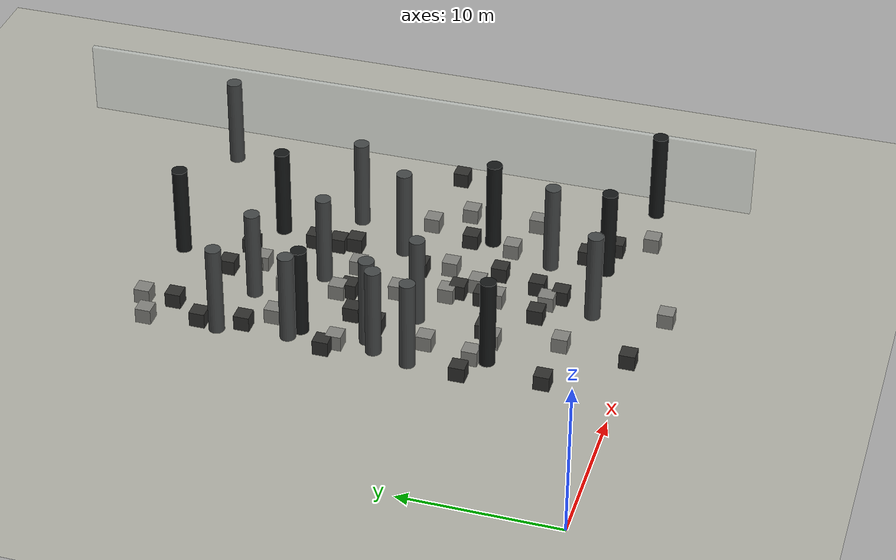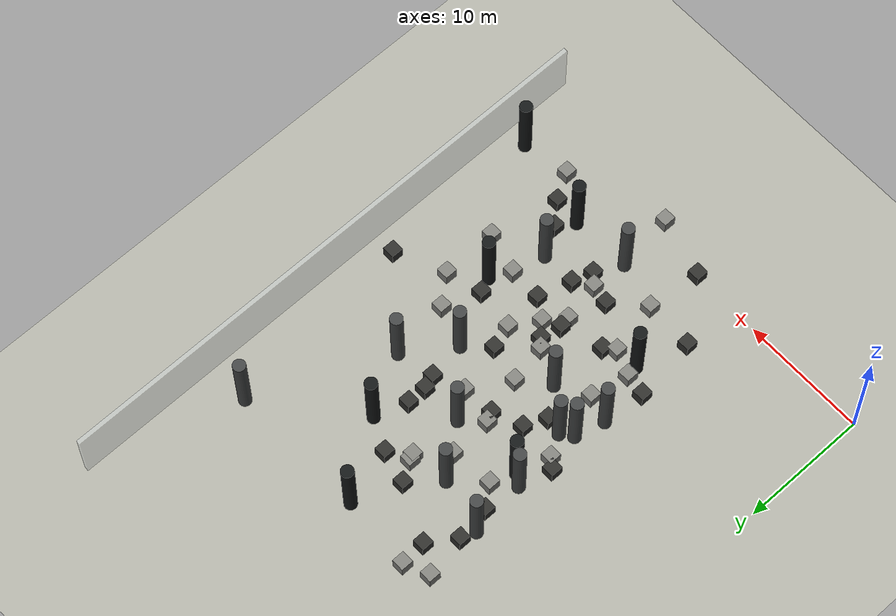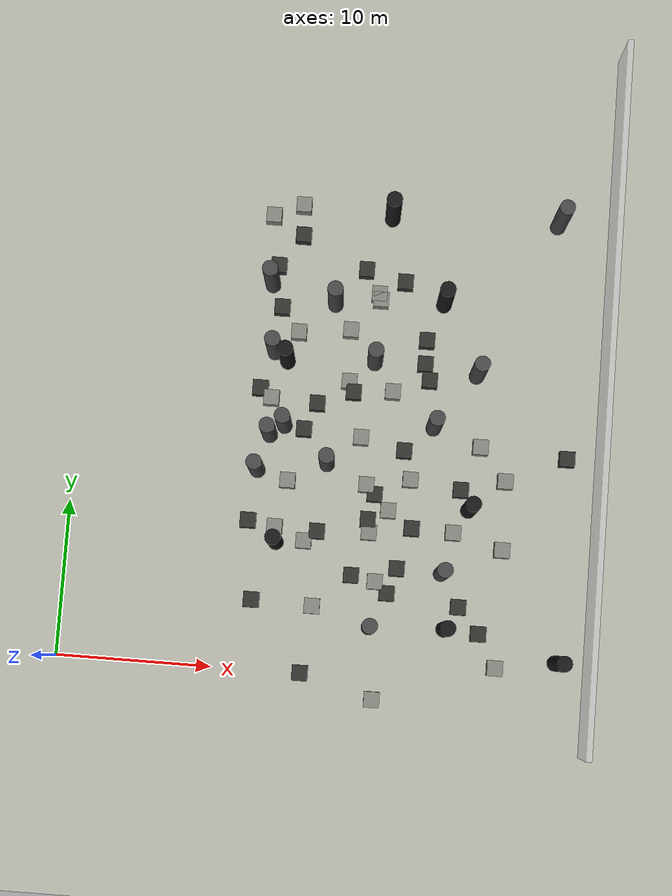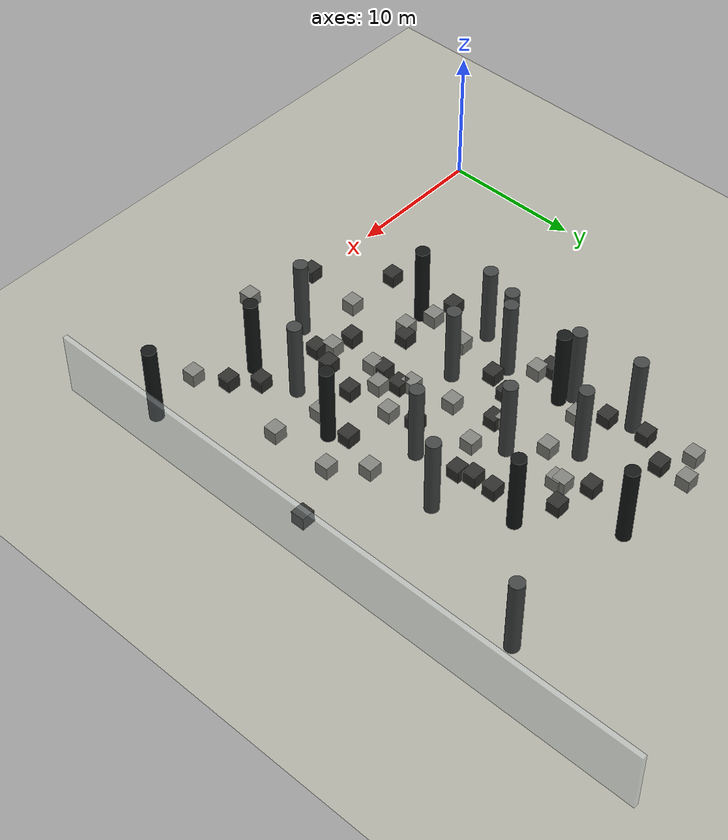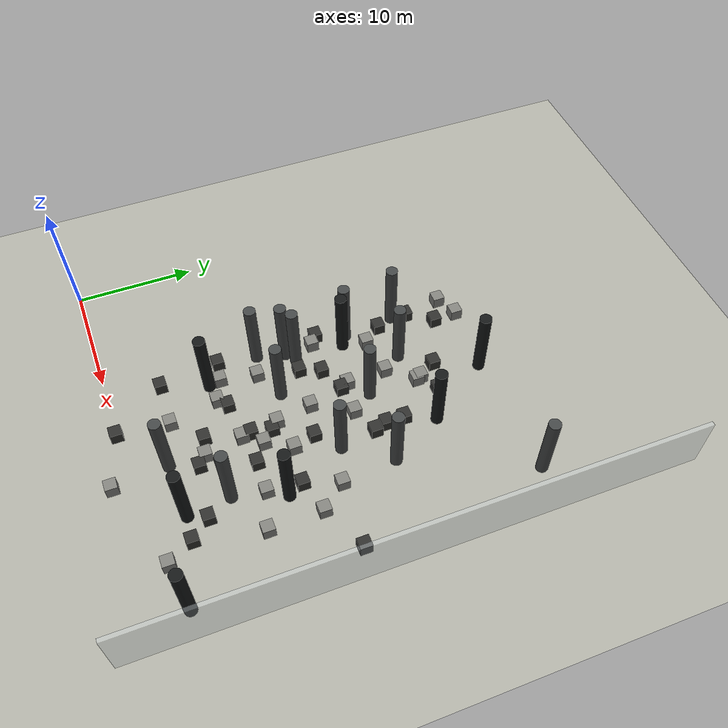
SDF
<sdf version="1.9">
 <world name="sando_forest3_walls_xtd2">
  <model name="ground_plane">
   <static>true</static>
   <link name="link">
    <collision name="collision">
     <geometry><plane><normal>0 0 1</normal><size>120 120</size></plane></geometry>
    </collision>
    <visual name="visual">
     <geometry><plane><normal>0 0 1</normal><size>120 120</size></plane></geometry>
     <material><ambient>0.68 0.68 0.64 1</ambient><diffuse>0.68 0.68 0.64 1</diffuse></material>
    </visual>
   </link>
  </model>
  <model name="struct_pillar_003">
   <static>true</static>
   <pose>13.526 8.273 3.000 0 0 0</pose>
   <link name="link">
    <collision name="collision">
     <geometry><cylinder><radius>0.500</radius><length>6.000</length></cylinder></geometry>
    </collision>
    <visual name="visual">
     <geometry><cylinder><radius>0.500</radius><length>6.000</length></cylinder></geometry>
     <material><ambient>0.08 0.09 0.09 1</ambient><diffuse>0.08 0.09 0.09 1</diffuse></material>
    </visual>
   </link>
  </model>
  <model name="struct_pillar_004">
   <static>true</static>
   <pose>16.454 13.565 3.000 0 0 0</pose>
   <link name="link">
    <collision name="collision">
     <geometry><cylinder><radius>0.500</radius><length>6.000</length></cylinder></geometry>
    </collision>
    <visual name="visual">
     <geometry><cylinder><radius>0.500</radius><length>6.000</length></cylinder></geometry>
     <material><ambient>0.26 0.27 0.27 1</ambient><diffuse>0.26 0.27 0.27 1</diffuse></material>
    </visual>
   </link>
  </model>
  <model name="struct_pillar_005">
   <static>true</static>
   <pose>11.979 12.843 3.000 0 0 0</pose>
   <link name="link">
    <collision name="collision">
     <geometry><cylinder><radius>0.500</radius><length>6.000</length></cylinder></geometry>
    </collision>
    <visual name="visual">
     <geometry><cylinder><radius>0.500</radius><length>6.000</length></cylinder></geometry>
     <material><ambient>0.26 0.27 0.27 1</ambient><diffuse>0.26 0.27 0.27 1</diffuse></material>
    </visual>
   </link>
  </model>
  <model name="struct_pillar_007">
   <static>true</static>
   <pose>19.924 3.259 3.000 0 0 0</pose>
   <link name="link">
    <collision name="collision">
     <geometry><cylinder><radius>0.500</radius><length>6.000</length></cylinder></geometry>
    </collision>
    <visual name="visual">
     <geometry><cylinder><radius>0.500</radius><length>6.000</length></cylinder></geometry>
     <material><ambient>0.26 0.27 0.27 1</ambient><diffuse>0.26 0.27 0.27 1</diffuse></material>
    </visual>
   </link>
  </model>
  <model name="struct_pillar_008">
   <static>true</static>
   <pose>24.324 7.032 3.000 0 0 0</pose>
   <link name="link">
    <collision name="collision">
     <geometry><cylinder><radius>0.500</radius><length>6.000</length></cylinder></geometry>
    </collision>
    <visual name="visual">
     <geometry><cylinder><radius>0.500</radius><length>6.000</length></cylinder></geometry>
     <material><ambient>0.26 0.27 0.27 1</ambient><diffuse>0.26 0.27 0.27 1</diffuse></material>
    </visual>
   </link>
  </model>
  <model name="struct_pillar_009">
   <static>true</static>
   <pose>25.796 11.229 3.000 0 0 0</pose>
   <link name="link">
    <collision name="collision">
     <geometry><cylinder><radius>0.500</radius><length>6.000</length></cylinder></geometry>
    </collision>
    <visual name="visual">
     <geometry><cylinder><radius>0.500</radius><length>6.000</length></cylinder></geometry>
     <material><ambient>0.08 0.09 0.09 1</ambient><diffuse>0.08 0.09 0.09 1</diffuse></material>
    </visual>
   </link>
  </model>
  <model name="struct_pillar_010">
   <static>true</static>
   <pose>23.188 16.411 3.000 0 0 0</pose>
   <link name="link">
    <collision name="collision">
     <geometry><cylinder><radius>0.500</radius><length>6.000</length></cylinder></geometry>
    </collision>
    <visual name="visual">
     <geometry><cylinder><radius>0.500</radius><length>6.000</length></cylinder></geometry>
     <material><ambient>0.26 0.27 0.27 1</ambient><diffuse>0.26 0.27 0.27 1</diffuse></material>
    </visual>
   </link>
  </model>
  <model name="struct_pillar_012">
   <static>true</static>
   <pose>24.723 3.481 3.000 0 0 0</pose>
   <link name="link">
    <collision name="collision">
     <geometry><cylinder><radius>0.500</radius><length>6.000</length></cylinder></geometry>
    </collision>
    <visual name="visual">
     <geometry><cylinder><radius>0.500</radius><length>6.000</length></cylinder></geometry>
     <material><ambient>0.08 0.09 0.09 1</ambient><diffuse>0.08 0.09 0.09 1</diffuse></material>
    </visual>
   </link>
  </model>
  <model name="struct_pillar_015">
   <static>true</static>
   <pose>13.375 20.097 3.000 0 0 0</pose>
   <link name="link">
    <collision name="collision">
     <geometry><cylinder><radius>0.500</radius><length>6.000</length></cylinder></geometry>
    </collision>
    <visual name="visual">
     <geometry><cylinder><radius>0.500</radius><length>6.000</length></cylinder></geometry>
     <material><ambient>0.08 0.09 0.09 1</ambient><diffuse>0.08 0.09 0.09 1</diffuse></material>
    </visual>
   </link>
  </model>
  <model name="struct_pillar_016">
   <static>true</static>
   <pose>19.069 20.418 3.000 0 0 0</pose>
   <link name="link">
    <collision name="collision">
     <geometry><cylinder><radius>0.500</radius><length>6.000</length></cylinder></geometry>
    </collision>
    <visual name="visual">
     <geometry><cylinder><radius>0.500</radius><length>6.000</length></cylinder></geometry>
     <material><ambient>0.26 0.27 0.27 1</ambient><diffuse>0.26 0.27 0.27 1</diffuse></material>
    </visual>
   </link>
  </model>
  <model name="struct_pillar_017">
   <static>true</static>
   <pose>25.769 20.037 3.000 0 0 0</pose>
   <link name="link">
    <collision name="collision">
     <geometry><cylinder><radius>0.500</radius><length>6.000</length></cylinder></geometry>
    </collision>
    <visual name="visual">
     <geometry><cylinder><radius>0.500</radius><length>6.000</length></cylinder></geometry>
     <material><ambient>0.26 0.27 0.27 1</ambient><diffuse>0.26 0.27 0.27 1</diffuse></material>
    </visual>
   </link>
  </model>
  <model name="struct_pillar_020">
   <static>true</static>
   <pose>16.225 24.100 3.000 0 0 0</pose>
   <link name="link">
    <collision name="collision">
     <geometry><cylinder><radius>0.500</radius><length>6.000</length></cylinder></geometry>
    </collision>
    <visual name="visual">
     <geometry><cylinder><radius>0.500</radius><length>6.000</length></cylinder></geometry>
     <material><ambient>0.26 0.27 0.27 1</ambient><diffuse>0.26 0.27 0.27 1</diffuse></material>
    </visual>
   </link>
  </model>
  <model name="struct_pillar_021">
   <static>true</static>
   <pose>23.306 24.591 3.000 0 0 0</pose>
   <link name="link">
    <collision name="collision">
     <geometry><cylinder><radius>0.500</radius><length>6.000</length></cylinder></geometry>
    </collision>
    <visual name="visual">
     <geometry><cylinder><radius>0.500</radius><length>6.000</length></cylinder></geometry>
     <material><ambient>0.08 0.09 0.09 1</ambient><diffuse>0.08 0.09 0.09 1</diffuse></material>
    </visual>
   </link>
  </model>
  <model name="struct_pillar_027">
   <static>true</static>
   <pose>32.000 1.853 3.000 0 0 0</pose>
   <link name="link">
    <collision name="collision">
     <geometry><cylinder><radius>0.500</radius><length>6.000</length></cylinder></geometry>
    </collision>
    <visual name="visual">
     <geometry><cylinder><radius>0.500</radius><length>6.000</length></cylinder></geometry>
     <material><ambient>0.08 0.09 0.09 1</ambient><diffuse>0.08 0.09 0.09 1</diffuse></material>
    </visual>
   </link>
  </model>
  <model name="struct_pillar_030">
   <static>true</static>
   <pose>19.536 30.099 3.000 0 0 0</pose>
   <link name="link">
    <collision name="collision">
     <geometry><cylinder><radius>0.500</radius><length>6.000</length></cylinder></geometry>
    </collision>
    <visual name="visual">
     <geometry><cylinder><radius>0.500</radius><length>6.000</length></cylinder></geometry>
     <material><ambient>0.08 0.09 0.09 1</ambient><diffuse>0.08 0.09 0.09 1</diffuse></material>
    </visual>
   </link>
  </model>
  <model name="struct_pillar_031">
   <static>true</static>
   <pose>30.466 30.389 3.000 0 0 0</pose>
   <link name="link">
    <collision name="collision">
     <geometry><cylinder><radius>0.500</radius><length>6.000</length></cylinder></geometry>
    </collision>
    <visual name="visual">
     <geometry><cylinder><radius>0.500</radius><length>6.000</length></cylinder></geometry>
     <material><ambient>0.26 0.27 0.27 1</ambient><diffuse>0.26 0.27 0.27 1</diffuse></material>
    </visual>
   </link>
  </model>
  <model name="struct_pillar_034">
   <static>true</static>
   <pose>12.025 25.099 3.000 0 0 0</pose>
   <link name="link">
    <collision name="collision">
     <geometry><cylinder><radius>0.500</radius><length>6.000</length></cylinder></geometry>
    </collision>
    <visual name="visual">
     <geometry><cylinder><radius>0.500</radius><length>6.000</length></cylinder></geometry>
     <material><ambient>0.26 0.27 0.27 1</ambient><diffuse>0.26 0.27 0.27 1</diffuse></material>
    </visual>
   </link>
  </model>
  <model name="struct_pillar_035">
   <static>true</static>
   <pose>12.516 20.647 3.000 0 0 0</pose>
   <link name="link">
    <collision name="collision">
     <geometry><cylinder><radius>0.500</radius><length>6.000</length></cylinder></geometry>
    </collision>
    <visual name="visual">
     <geometry><cylinder><radius>0.500</radius><length>6.000</length></cylinder></geometry>
     <material><ambient>0.26 0.27 0.27 1</ambient><diffuse>0.26 0.27 0.27 1</diffuse></material>
    </visual>
   </link>
  </model>
  <model name="struct_pillar_037">
   <static>true</static>
   <pose>12.606 15.183 3.000 0 0 0</pose>
   <link name="link">
    <collision name="collision">
     <geometry><cylinder><radius>0.500</radius><length>6.000</length></cylinder></geometry>
    </collision>
    <visual name="visual">
     <geometry><cylinder><radius>0.500</radius><length>6.000</length></cylinder></geometry>
     <material><ambient>0.26 0.27 0.27 1</ambient><diffuse>0.26 0.27 0.27 1</diffuse></material>
    </visual>
   </link>
  </model>
  <model name="struct_pillar_038">
   <static>true</static>
   <pose>13.505 15.862 3.000 0 0 0</pose>
   <link name="link">
    <collision name="collision">
     <geometry><cylinder><radius>0.500</radius><length>6.000</length></cylinder></geometry>
    </collision>
    <visual name="visual">
     <geometry><cylinder><radius>0.500</radius><length>6.000</length></cylinder></geometry>
     <material><ambient>0.26 0.27 0.27 1</ambient><diffuse>0.26 0.27 0.27 1</diffuse></material>
    </visual>
   </link>
  </model>
  <model name="struct_wall_044">
   <static>true</static>
   <pose>12.761 23.593 0.500 0 0 0</pose>
   <link name="link">
    <collision name="collision"><geometry><box><size>1.000 1.000 1.000</size></box></geometry></collision>
    <visual name="visual">
     <geometry><box><size>1.000 1.000 1.000</size></box></geometry>
     <material><ambient>0.18 0.18 0.17 1</ambient><diffuse>0.18 0.18 0.17 1</diffuse></material>
    </visual>
   </link>
  </model>
  <model name="struct_wall_045">
   <static>true</static>
   <pose>12.518 17.585 0.500 0 0 0</pose>
   <link name="link">
    <collision name="collision"><geometry><box><size>1.000 1.000 1.000</size></box></geometry></collision>
    <visual name="visual">
     <geometry><box><size>1.000 1.000 1.000</size></box></geometry>
     <material><ambient>0.50 0.50 0.48 1</ambient><diffuse>0.50 0.50 0.48 1</diffuse></material>
    </visual>
   </link>
  </model>
  <model name="struct_wall_046">
   <static>true</static>
   <pose>19.349 10.146 0.500 0 0 0</pose>
   <link name="link">
    <collision name="collision"><geometry><box><size>1.000 1.000 1.000</size></box></geometry></collision>
    <visual name="visual">
     <geometry><box><size>1.000 1.000 1.000</size></box></geometry>
     <material><ambient>0.18 0.18 0.17 1</ambient><diffuse>0.18 0.18 0.17 1</diffuse></material>
    </visual>
   </link>
  </model>
  <model name="struct_wall_047">
   <static>true</static>
   <pose>19.090 12.381 0.500 0 0 0</pose>
   <link name="link">
    <collision name="collision"><geometry><box><size>1.000 1.000 1.000</size></box></geometry></collision>
    <visual name="visual">
     <geometry><box><size>1.000 1.000 1.000</size></box></geometry>
     <material><ambient>0.50 0.50 0.48 1</ambient><diffuse>0.50 0.50 0.48 1</diffuse></material>
    </visual>
   </link>
  </model>
  <model name="struct_wall_048">
   <static>true</static>
   <pose>22.716 19.471 0.500 0 0 0</pose>
   <link name="link">
    <collision name="collision"><geometry><box><size>1.000 1.000 1.000</size></box></geometry></collision>
    <visual name="visual">
     <geometry><box><size>1.000 1.000 1.000</size></box></geometry>
     <material><ambient>0.18 0.18 0.17 1</ambient><diffuse>0.18 0.18 0.17 1</diffuse></material>
    </visual>
   </link>
  </model>
  <model name="struct_wall_049">
   <static>true</static>
   <pose>21.922 12.910 0.500 0 0 0</pose>
   <link name="link">
    <collision name="collision"><geometry><box><size>1.000 1.000 1.000</size></box></geometry></collision>
    <visual name="visual">
     <geometry><box><size>1.000 1.000 1.000</size></box></geometry>
     <material><ambient>0.50 0.50 0.48 1</ambient><diffuse>0.50 0.50 0.48 1</diffuse></material>
    </visual>
   </link>
  </model>
  <model name="struct_wall_058">
   <static>true</static>
   <pose>11.635 9.532 0.500 0 0 0</pose>
   <link name="link">
    <collision name="collision"><geometry><box><size>1.000 1.000 1.000</size></box></geometry></collision>
    <visual name="visual">
     <geometry><box><size>1.000 1.000 1.000</size></box></geometry>
     <material><ambient>0.18 0.18 0.17 1</ambient><diffuse>0.18 0.18 0.17 1</diffuse></material>
    </visual>
   </link>
  </model>
  <model name="struct_wall_059">
   <static>true</static>
   <pose>15.314 8.470 0.500 0 0 0</pose>
   <link name="link">
    <collision name="collision"><geometry><box><size>1.000 1.000 1.000</size></box></geometry></collision>
    <visual name="visual">
     <geometry><box><size>1.000 1.000 1.000</size></box></geometry>
     <material><ambient>0.50 0.50 0.48 1</ambient><diffuse>0.50 0.50 0.48 1</diffuse></material>
    </visual>
   </link>
  </model>
  <model name="struct_wall_060">
   <static>true</static>
   <pose>18.533 6.489 0.500 0 0 0</pose>
   <link name="link">
    <collision name="collision"><geometry><box><size>1.000 1.000 1.000</size></box></geometry></collision>
    <visual name="visual">
     <geometry><box><size>1.000 1.000 1.000</size></box></geometry>
     <material><ambient>0.18 0.18 0.17 1</ambient><diffuse>0.18 0.18 0.17 1</diffuse></material>
    </visual>
   </link>
  </model>
  <model name="struct_wall_061">
   <static>true</static>
   <pose>16.166 4.338 0.500 0 0 0</pose>
   <link name="link">
    <collision name="collision"><geometry><box><size>1.000 1.000 1.000</size></box></geometry></collision>
    <visual name="visual">
     <geometry><box><size>1.000 1.000 1.000</size></box></geometry>
     <material><ambient>0.50 0.50 0.48 1</ambient><diffuse>0.50 0.50 0.48 1</diffuse></material>
    </visual>
   </link>
  </model>
  <model name="struct_wall_062">
   <static>true</static>
   <pose>25.538 4.952 0.500 0 0 0</pose>
   <link name="link">
    <collision name="collision"><geometry><box><size>1.000 1.000 1.000</size></box></geometry></collision>
    <visual name="visual">
     <geometry><box><size>1.000 1.000 1.000</size></box></geometry>
     <material><ambient>0.18 0.18 0.17 1</ambient><diffuse>0.18 0.18 0.17 1</diffuse></material>
    </visual>
   </link>
  </model>
  <model name="struct_wall_063">
   <static>true</static>
   <pose>24.898 9.690 0.500 0 0 0</pose>
   <link name="link">
    <collision name="collision"><geometry><box><size>1.000 1.000 1.000</size></box></geometry></collision>
    <visual name="visual">
     <geometry><box><size>1.000 1.000 1.000</size></box></geometry>
     <material><ambient>0.50 0.50 0.48 1</ambient><diffuse>0.50 0.50 0.48 1</diffuse></material>
    </visual>
   </link>
  </model>
  <model name="struct_wall_064">
   <static>true</static>
   <pose>22.211 9.770 0.500 0 0 0</pose>
   <link name="link">
    <collision name="collision"><geometry><box><size>1.000 1.000 1.000</size></box></geometry></collision>
    <visual name="visual">
     <geometry><box><size>1.000 1.000 1.000</size></box></geometry>
     <material><ambient>0.18 0.18 0.17 1</ambient><diffuse>0.18 0.18 0.17 1</diffuse></material>
    </visual>
   </link>
  </model>
  <model name="struct_wall_065">
   <static>true</static>
   <pose>20.618 10.813 0.500 0 0 0</pose>
   <link name="link">
    <collision name="collision"><geometry><box><size>1.000 1.000 1.000</size></box></geometry></collision>
    <visual name="visual">
     <geometry><box><size>1.000 1.000 1.000</size></box></geometry>
     <material><ambient>0.50 0.50 0.48 1</ambient><diffuse>0.50 0.50 0.48 1</diffuse></material>
    </visual>
   </link>
  </model>
  <model name="struct_wall_074">
   <static>true</static>
   <pose>11.754 18.169 0.500 0 0 0</pose>
   <link name="link">
    <collision name="collision"><geometry><box><size>1.000 1.000 1.000</size></box></geometry></collision>
    <visual name="visual">
     <geometry><box><size>1.000 1.000 1.000</size></box></geometry>
     <material><ambient>0.18 0.18 0.17 1</ambient><diffuse>0.18 0.18 0.17 1</diffuse></material>
    </visual>
   </link>
  </model>
  <model name="struct_wall_075">
   <static>true</static>
   <pose>18.529 15.422 0.500 0 0 0</pose>
   <link name="link">
    <collision name="collision"><geometry><box><size>1.000 1.000 1.000</size></box></geometry></collision>
    <visual name="visual">
     <geometry><box><size>1.000 1.000 1.000</size></box></geometry>
     <material><ambient>0.50 0.50 0.48 1</ambient><diffuse>0.50 0.50 0.48 1</diffuse></material>
    </visual>
   </link>
  </model>
  <model name="struct_wall_076">
   <static>true</static>
   <pose>21.382 14.764 0.500 0 0 0</pose>
   <link name="link">
    <collision name="collision"><geometry><box><size>1.000 1.000 1.000</size></box></geometry></collision>
    <visual name="visual">
     <geometry><box><size>1.000 1.000 1.000</size></box></geometry>
     <material><ambient>0.18 0.18 0.17 1</ambient><diffuse>0.18 0.18 0.17 1</diffuse></material>
    </visual>
   </link>
  </model>
  <model name="struct_wall_077">
   <static>true</static>
   <pose>26.302 15.347 0.500 0 0 0</pose>
   <link name="link">
    <collision name="collision"><geometry><box><size>1.000 1.000 1.000</size></box></geometry></collision>
    <visual name="visual">
     <geometry><box><size>1.000 1.000 1.000</size></box></geometry>
     <material><ambient>0.50 0.50 0.48 1</ambient><diffuse>0.50 0.50 0.48 1</diffuse></material>
    </visual>
   </link>
  </model>
  <model name="struct_wall_078">
   <static>true</static>
   <pose>22.362 20.523 0.500 0 0 0</pose>
   <link name="link">
    <collision name="collision"><geometry><box><size>1.000 1.000 1.000</size></box></geometry></collision>
    <visual name="visual">
     <geometry><box><size>1.000 1.000 1.000</size></box></geometry>
     <material><ambient>0.18 0.18 0.17 1</ambient><diffuse>0.18 0.18 0.17 1</diffuse></material>
    </visual>
   </link>
  </model>
  <model name="struct_wall_079">
   <static>true</static>
   <pose>20.370 18.557 0.500 0 0 0</pose>
   <link name="link">
    <collision name="collision"><geometry><box><size>1.000 1.000 1.000</size></box></geometry></collision>
    <visual name="visual">
     <geometry><box><size>1.000 1.000 1.000</size></box></geometry>
     <material><ambient>0.50 0.50 0.48 1</ambient><diffuse>0.50 0.50 0.48 1</diffuse></material>
    </visual>
   </link>
  </model>
  <model name="struct_wall_080">
   <static>true</static>
   <pose>17.833 18.344 0.500 0 0 0</pose>
   <link name="link">
    <collision name="collision"><geometry><box><size>1.000 1.000 1.000</size></box></geometry></collision>
    <visual name="visual">
     <geometry><box><size>1.000 1.000 1.000</size></box></geometry>
     <material><ambient>0.18 0.18 0.17 1</ambient><diffuse>0.18 0.18 0.17 1</diffuse></material>
    </visual>
   </link>
  </model>
  <model name="struct_wall_081">
   <static>true</static>
   <pose>17.356 22.414 0.500 0 0 0</pose>
   <link name="link">
    <collision name="collision"><geometry><box><size>1.000 1.000 1.000</size></box></geometry></collision>
    <visual name="visual">
     <geometry><box><size>1.000 1.000 1.000</size></box></geometry>
     <material><ambient>0.50 0.50 0.48 1</ambient><diffuse>0.50 0.50 0.48 1</diffuse></material>
    </visual>
   </link>
  </model>
  <model name="struct_wall_082">
   <static>true</static>
   <pose>20.691 25.841 0.500 0 0 0</pose>
   <link name="link">
    <collision name="collision"><geometry><box><size>1.000 1.000 1.000</size></box></geometry></collision>
    <visual name="visual">
     <geometry><box><size>1.000 1.000 1.000</size></box></geometry>
     <material><ambient>0.18 0.18 0.17 1</ambient><diffuse>0.18 0.18 0.17 1</diffuse></material>
    </visual>
   </link>
  </model>
  <model name="struct_wall_083">
   <static>true</static>
   <pose>13.978 22.038 0.500 0 0 0</pose>
   <link name="link">
    <collision name="collision"><geometry><box><size>1.000 1.000 1.000</size></box></geometry></collision>
    <visual name="visual">
     <geometry><box><size>1.000 1.000 1.000</size></box></geometry>
     <material><ambient>0.50 0.50 0.48 1</ambient><diffuse>0.50 0.50 0.48 1</diffuse></material>
    </visual>
   </link>
  </model>
  <model name="struct_wall_084">
   <static>true</static>
   <pose>15.529 17.439 0.500 0 0 0</pose>
   <link name="link">
    <collision name="collision"><geometry><box><size>1.000 1.000 1.000</size></box></geometry></collision>
    <visual name="visual">
     <geometry><box><size>1.000 1.000 1.000</size></box></geometry>
     <material><ambient>0.18 0.18 0.17 1</ambient><diffuse>0.18 0.18 0.17 1</diffuse></material>
    </visual>
   </link>
  </model>
  <model name="struct_wall_085">
   <static>true</static>
   <pose>17.498 19.026 0.500 0 0 0</pose>
   <link name="link">
    <collision name="collision"><geometry><box><size>1.000 1.000 1.000</size></box></geometry></collision>
    <visual name="visual">
     <geometry><box><size>1.000 1.000 1.000</size></box></geometry>
     <material><ambient>0.50 0.50 0.48 1</ambient><diffuse>0.50 0.50 0.48 1</diffuse></material>
    </visual>
   </link>
  </model>
  <model name="struct_wall_086">
   <static>true</static>
   <pose>22.361 22.089 0.500 0 0 0</pose>
   <link name="link">
    <collision name="collision"><geometry><box><size>1.000 1.000 1.000</size></box></geometry></collision>
    <visual name="visual">
     <geometry><box><size>1.000 1.000 1.000</size></box></geometry>
     <material><ambient>0.18 0.18 0.17 1</ambient><diffuse>0.18 0.18 0.17 1</diffuse></material>
    </visual>
   </link>
  </model>
  <model name="struct_wall_087">
   <static>true</static>
   <pose>19.041 24.935 0.500 0 0 0</pose>
   <link name="link">
    <collision name="collision"><geometry><box><size>1.000 1.000 1.000</size></box></geometry></collision>
    <visual name="visual">
     <geometry><box><size>1.000 1.000 1.000</size></box></geometry>
     <material><ambient>0.50 0.50 0.48 1</ambient><diffuse>0.50 0.50 0.48 1</diffuse></material>
    </visual>
   </link>
  </model>
  <model name="struct_wall_088">
   <static>true</static>
   <pose>18.103 26.475 0.500 0 0 0</pose>
   <link name="link">
    <collision name="collision"><geometry><box><size>1.000 1.000 1.000</size></box></geometry></collision>
    <visual name="visual">
     <geometry><box><size>1.000 1.000 1.000</size></box></geometry>
     <material><ambient>0.18 0.18 0.17 1</ambient><diffuse>0.18 0.18 0.17 1</diffuse></material>
    </visual>
   </link>
  </model>
  <model name="struct_wall_090">
   <static>true</static>
   <pose>14.787 15.700 0.500 0 0 0</pose>
   <link name="link">
    <collision name="collision"><geometry><box><size>1.000 1.000 1.000</size></box></geometry></collision>
    <visual name="visual">
     <geometry><box><size>1.000 1.000 1.000</size></box></geometry>
     <material><ambient>0.18 0.18 0.17 1</ambient><diffuse>0.18 0.18 0.17 1</diffuse></material>
    </visual>
   </link>
  </model>
  <model name="struct_wall_091">
   <static>true</static>
   <pose>13.982 12.289 0.500 0 0 0</pose>
   <link name="link">
    <collision name="collision"><geometry><box><size>1.000 1.000 1.000</size></box></geometry></collision>
    <visual name="visual">
     <geometry><box><size>1.000 1.000 1.000</size></box></geometry>
     <material><ambient>0.50 0.50 0.48 1</ambient><diffuse>0.50 0.50 0.48 1</diffuse></material>
    </visual>
   </link>
  </model>
  <model name="struct_wall_092">
   <static>true</static>
   <pose>19.676 11.802 0.500 0 0 0</pose>
   <link name="link">
    <collision name="collision"><geometry><box><size>1.000 1.000 1.000</size></box></geometry></collision>
    <visual name="visual">
     <geometry><box><size>1.000 1.000 1.000</size></box></geometry>
     <material><ambient>0.18 0.18 0.17 1</ambient><diffuse>0.18 0.18 0.17 1</diffuse></material>
    </visual>
   </link>
  </model>
  <model name="struct_wall_093">
   <static>true</static>
   <pose>19.474 9.318 0.500 0 0 0</pose>
   <link name="link">
    <collision name="collision"><geometry><box><size>1.000 1.000 1.000</size></box></geometry></collision>
    <visual name="visual">
     <geometry><box><size>1.000 1.000 1.000</size></box></geometry>
     <material><ambient>0.50 0.50 0.48 1</ambient><diffuse>0.50 0.50 0.48 1</diffuse></material>
    </visual>
   </link>
  </model>
  <model name="struct_wall_094">
   <static>true</static>
   <pose>16.128 9.146 0.500 0 0 0</pose>
   <link name="link">
    <collision name="collision"><geometry><box><size>1.000 1.000 1.000</size></box></geometry></collision>
    <visual name="visual">
     <geometry><box><size>1.000 1.000 1.000</size></box></geometry>
     <material><ambient>0.18 0.18 0.17 1</ambient><diffuse>0.18 0.18 0.17 1</diffuse></material>
    </visual>
   </link>
  </model>
  <model name="struct_wall_095">
   <static>true</static>
   <pose>13.373 9.245 0.500 0 0 0</pose>
   <link name="link">
    <collision name="collision"><geometry><box><size>1.000 1.000 1.000</size></box></geometry></collision>
    <visual name="visual">
     <geometry><box><size>1.000 1.000 1.000</size></box></geometry>
     <material><ambient>0.50 0.50 0.48 1</ambient><diffuse>0.50 0.50 0.48 1</diffuse></material>
    </visual>
   </link>
  </model>
  <model name="struct_wall_108">
   <static>true</static>
   <pose>12.328 26.341 0.500 0 0 0</pose>
   <link name="link">
    <collision name="collision"><geometry><box><size>1.000 1.000 1.000</size></box></geometry></collision>
    <visual name="visual">
     <geometry><box><size>1.000 1.000 1.000</size></box></geometry>
     <material><ambient>0.18 0.18 0.17 1</ambient><diffuse>0.18 0.18 0.17 1</diffuse></material>
    </visual>
   </link>
  </model>
  <model name="struct_wall_110">
   <static>true</static>
   <pose>13.787 28.480 0.500 0 0 0</pose>
   <link name="link">
    <collision name="collision"><geometry><box><size>1.000 1.000 1.000</size></box></geometry></collision>
    <visual name="visual">
     <geometry><box><size>1.000 1.000 1.000</size></box></geometry>
     <material><ambient>0.18 0.18 0.17 1</ambient><diffuse>0.18 0.18 0.17 1</diffuse></material>
    </visual>
   </link>
  </model>
  <model name="struct_wall_111">
   <static>true</static>
   <pose>13.662 30.491 0.500 0 0 0</pose>
   <link name="link">
    <collision name="collision"><geometry><box><size>1.000 1.000 1.000</size></box></geometry></collision>
    <visual name="visual">
     <geometry><box><size>1.000 1.000 1.000</size></box></geometry>
     <material><ambient>0.50 0.50 0.48 1</ambient><diffuse>0.50 0.50 0.48 1</diffuse></material>
    </visual>
   </link>
  </model>
  <model name="struct_wall_113">
   <static>true</static>
   <pose>11.751 29.659 0.500 0 0 0</pose>
   <link name="link">
    <collision name="collision"><geometry><box><size>1.000 1.000 1.000</size></box></geometry></collision>
    <visual name="visual">
     <geometry><box><size>1.000 1.000 1.000</size></box></geometry>
     <material><ambient>0.50 0.50 0.48 1</ambient><diffuse>0.50 0.50 0.48 1</diffuse></material>
    </visual>
   </link>
  </model>
  <model name="struct_wall_128">
   <static>true</static>
   <pose>12.253 4.462 0.500 0 0 0</pose>
   <link name="link">
    <collision name="collision"><geometry><box><size>1.000 1.000 1.000</size></box></geometry></collision>
    <visual name="visual">
     <geometry><box><size>1.000 1.000 1.000</size></box></geometry>
     <material><ambient>0.18 0.18 0.17 1</ambient><diffuse>0.18 0.18 0.17 1</diffuse></material>
    </visual>
   </link>
  </model>
  <model name="struct_wall_129">
   <static>true</static>
   <pose>28.132 1.258 0.500 0 0 0</pose>
   <link name="link">
    <collision name="collision"><geometry><box><size>1.000 1.000 1.000</size></box></geometry></collision>
    <visual name="visual">
     <geometry><box><size>1.000 1.000 1.000</size></box></geometry>
     <material><ambient>0.50 0.50 0.48 1</ambient><diffuse>0.50 0.50 0.48 1</diffuse></material>
    </visual>
   </link>
  </model>
  <model name="struct_wall_130">
   <static>true</static>
   <pose>31.933 14.987 0.500 0 0 0</pose>
   <link name="link">
    <collision name="collision"><geometry><box><size>1.000 1.000 1.000</size></box></geometry></collision>
    <visual name="visual">
     <geometry><box><size>1.000 1.000 1.000</size></box></geometry>
     <material><ambient>0.18 0.18 0.17 1</ambient><diffuse>0.18 0.18 0.17 1</diffuse></material>
    </visual>
   </link>
  </model>
  <model name="struct_wall_131">
   <static>true</static>
   <pose>19.175 24.554 0.500 0 0 0</pose>
   <link name="link">
    <collision name="collision"><geometry><box><size>1.000 1.000 1.000</size></box></geometry></collision>
    <visual name="visual">
     <geometry><box><size>1.000 1.000 1.000</size></box></geometry>
     <material><ambient>0.50 0.50 0.48 1</ambient><diffuse>0.50 0.50 0.48 1</diffuse></material>
    </visual>
   </link>
  </model>
  <model name="struct_wall_132">
   <static>true</static>
   <pose>20.900 5.493 0.500 0 0 0</pose>
   <link name="link">
    <collision name="collision"><geometry><box><size>1.000 1.000 1.000</size></box></geometry></collision>
    <visual name="visual">
     <geometry><box><size>1.000 1.000 1.000</size></box></geometry>
     <material><ambient>0.18 0.18 0.17 1</ambient><diffuse>0.18 0.18 0.17 1</diffuse></material>
    </visual>
   </link>
  </model>
  <model name="struct_wall_133">
   <static>true</static>
   <pose>20.080 6.194 0.500 0 0 0</pose>
   <link name="link">
    <collision name="collision"><geometry><box><size>1.000 1.000 1.000</size></box></geometry></collision>
    <visual name="visual">
     <geometry><box><size>1.000 1.000 1.000</size></box></geometry>
     <material><ambient>0.50 0.50 0.48 1</ambient><diffuse>0.50 0.50 0.48 1</diffuse></material>
    </visual>
   </link>
  </model>
  <model name="struct_wall_134">
   <static>true</static>
   <pose>15.722 0.033 0.500 0 0 0</pose>
   <link name="link">
    <collision name="collision"><geometry><box><size>1.000 1.000 1.000</size></box></geometry></collision>
    <visual name="visual">
     <geometry><box><size>1.000 1.000 1.000</size></box></geometry>
     <material><ambient>0.18 0.18 0.17 1</ambient><diffuse>0.18 0.18 0.17 1</diffuse></material>
    </visual>
   </link>
  </model>
  <model name="struct_wall_135">
   <static>true</static>
   <pose>20.419 -1.301 0.500 0 0 0</pose>
   <link name="link">
    <collision name="collision"><geometry><box><size>1.000 1.000 1.000</size></box></geometry></collision>
    <visual name="visual">
     <geometry><box><size>1.000 1.000 1.000</size></box></geometry>
     <material><ambient>0.50 0.50 0.48 1</ambient><diffuse>0.50 0.50 0.48 1</diffuse></material>
    </visual>
   </link>
  </model>
  <model name="struct_wall_136">
   <static>true</static>
   <pose>26.932 3.340 0.500 0 0 0</pose>
   <link name="link">
    <collision name="collision"><geometry><box><size>1.000 1.000 1.000</size></box></geometry></collision>
    <visual name="visual">
     <geometry><box><size>1.000 1.000 1.000</size></box></geometry>
     <material><ambient>0.18 0.18 0.17 1</ambient><diffuse>0.18 0.18 0.17 1</diffuse></material>
    </visual>
   </link>
  </model>
  <model name="struct_wall_137">
   <static>true</static>
   <pose>28.110 8.802 0.500 0 0 0</pose>
   <link name="link">
    <collision name="collision"><geometry><box><size>1.000 1.000 1.000</size></box></geometry></collision>
    <visual name="visual">
     <geometry><box><size>1.000 1.000 1.000</size></box></geometry>
     <material><ambient>0.50 0.50 0.48 1</ambient><diffuse>0.50 0.50 0.48 1</diffuse></material>
    </visual>
   </link>
  </model>
  <model name="struct_wall_138">
   <static>true</static>
   <pose>25.214 12.484 0.500 0 0 0</pose>
   <link name="link">
    <collision name="collision"><geometry><box><size>1.000 1.000 1.000</size></box></geometry></collision>
    <visual name="visual">
     <geometry><box><size>1.000 1.000 1.000</size></box></geometry>
     <material><ambient>0.18 0.18 0.17 1</ambient><diffuse>0.18 0.18 0.17 1</diffuse></material>
    </visual>
   </link>
  </model>
  <model name="struct_wall_139">
   <static>true</static>
   <pose>28.045 13.246 0.500 0 0 0</pose>
   <link name="link">
    <collision name="collision"><geometry><box><size>1.000 1.000 1.000</size></box></geometry></collision>
    <visual name="visual">
     <geometry><box><size>1.000 1.000 1.000</size></box></geometry>
     <material><ambient>0.50 0.50 0.48 1</ambient><diffuse>0.50 0.50 0.48 1</diffuse></material>
    </visual>
   </link>
  </model>
  <model name="struct_wall_140">
   <static>true</static>
   <pose>21.430 7.128 0.500 0 0 0</pose>
   <link name="link">
    <collision name="collision"><geometry><box><size>1.000 1.000 1.000</size></box></geometry></collision>
    <visual name="visual">
     <geometry><box><size>1.000 1.000 1.000</size></box></geometry>
     <material><ambient>0.18 0.18 0.17 1</ambient><diffuse>0.18 0.18 0.17 1</diffuse></material>
    </visual>
   </link>
  </model>
  <model name="outer_boundary_east">
   <static>true</static>
   <pose>34.000 19.000 2.400 0 0 0</pose>
   <link name="link">
    <collision name="collision"><geometry><box><size>0.350 46.000 4.800</size></box></geometry></collision>
    <visual name="visual">
     <transparency>0.65</transparency>
     <geometry><box><size>0.350 46.000 4.800</size></box></geometry>
     <material><ambient>0.82 0.86 0.88 0.35</ambient><diffuse>0.82 0.86 0.88 0.35</diffuse></material>
    </visual>
   </link>
  </model>
 </world>
</sdf>
